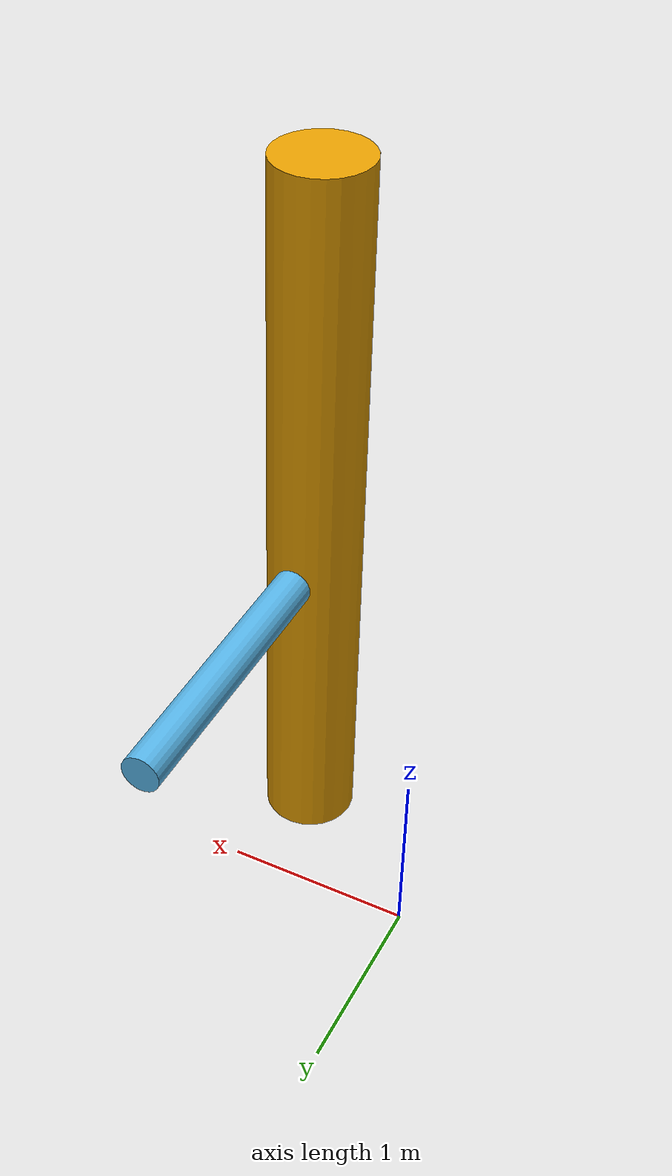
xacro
<?xml version="1.0" ?>
<robot name="vertical_obstacle_higher" xmlns:xacro="http://www.ros.org/wiki/xacro">

  <!-- Include -->
  <xacro:include filename="$(find planar_structure)/urdf/obstacle_parameters.xacro" />
  <xacro:include filename="$(find planar_structure)/urdf/obstacle_link_joint.xacro" />

  <!-- Obstacle description -->
  <m_link_cyl name="${link_00_name}"
              origin_rpy="0 0 0" origin_xyz="0.85 -0.6 2.0"
              mass="1000"
              ixx="800.0" ixy="0" ixz="0"
              iyy="800.0" iyz="0"
              izz="800.0"
              radius="0.25"
	      length="4.0" />

  <m_joint name="${link_00_name}_${link_01_name}_joint" type="revolute"
           axis_xyz="1 0 0"
           origin_rpy="0 0 0" origin_xyz="0.85 -0.35 1.75"
           parent="${link_00_name}" child="${link_01_name}"
           limit_e="1000" limit_l="-0.01" limit_u="1.3" limit_v="0.5"
           damping="0.1" friction="0.1" />

  <m_link_cyl name="${link_01_name}"
              origin_rpy="1.57 0 0" origin_xyz="0 0.75 0"
              mass="0.1"
              ixx="0.01" ixy="0" ixz="0"
              iyy="0.01" iyz="0"
              izz="0.01"
              radius="0.1"
	      length="1.5" />

  <!-- Macro for Torsional Joint Spring Plugin -->
  <gazebo>
    <plugin name="joint_spring" filename="libjoint_torsional_spring_plugin.so">
      <kx>100</kx>
      <set_point>0.01</set_point>
      <joint>${link_00_name}_${link_01_name}_joint</joint>
    </plugin>
  </gazebo>

</robot>

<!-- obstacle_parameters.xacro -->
<robot xmlns:xacro="http://www.ros.org/wiki/xacro">
  <xacro:property name="link_00_name" value="wall" />
  <xacro:property name="link_01_name" value="branch" />
</robot>

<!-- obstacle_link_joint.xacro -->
<robot xmlns:xacro="http://www.ros.org/wiki/xacro">

  <xacro:macro name="m_joint" params="name type axis_xyz origin_rpy origin_xyz parent child limit_e limit_l limit_u limit_v damping friction">
    <joint name="${name}" type="${type}">
      <axis xyz="${axis_xyz}" />
      <limit effort="${limit_e}" lower="${limit_l}" upper="${limit_u}" velocity="${limit_v}" />
      <dynamics damping="${damping}" friction="${friction}" />
      <origin rpy="${origin_rpy}" xyz="${origin_xyz}" />
      <parent link="${parent}" />
      <child link="${child}" />
    </joint>
  </xacro:macro>

  <xacro:macro name="k_joint" params="name type axis_xyz origin_rpy origin_xyz parent child limit_e limit_l limit_u limit_v damping friction spring_k spring_ref">
    <joint name="${name}" type="${type}">
      <axis xyz="${axis_xyz}" />
      <limit effort="${limit_e}" lower="${limit_l}" upper="${limit_u}" velocity="${limit_v}" />
      <dynamics damping="${damping}" friction="${friction}" spring_reference="${spring_ref}" spring_stiffness="${spring_k}" />
      <origin rpy="${origin_rpy}" xyz="${origin_xyz}" />
      <parent link="${parent}" />
      <child link="${child}" />
    </joint>
  </xacro:macro>

  <xacro:macro name="m_link_box" params="name origin_xyz origin_rpy size mass ixx ixy ixz iyy iyz izz">
    <link name="${name}">
      <inertial>
        <mass value="${mass}" />
        <origin rpy="${origin_rpy}" xyz="${origin_xyz}" />
        <inertia ixx="${ixx}" ixy="${ixy}" ixz="${ixz}" iyy="${iyy}" iyz="${iyz}" izz="${izz}" />
      </inertial>
      <collision>
        <origin rpy="${origin_rpy}" xyz="${origin_xyz}" />
        <geometry>
          <box size="${size}" />
        </geometry>
      </collision>
      <visual>
        <origin rpy="${origin_rpy}" xyz="${origin_xyz}" />
        <geometry>
          <box size="${size}" />
        </geometry>
      </visual>
    </link>
  </xacro:macro>

  <xacro:macro name="m_link_cyl" params="name origin_xyz origin_rpy radius length mass ixx ixy ixz iyy iyz izz">
    <link name="${name}">
      <inertial>
        <mass value="${mass}" />
        <origin rpy="${origin_rpy}" xyz="${origin_xyz}" />
        <inertia ixx="${ixx}" ixy="${ixy}" ixz="${ixz}" iyy="${iyy}" iyz="${iyz}" izz="${izz}" />
      </inertial>
      <collision>
        <origin rpy="${origin_rpy}" xyz="${origin_xyz}" />
        <geometry>
	  <cylinder radius="${radius}" length="${length}" />
        </geometry>
      </collision>
      <visual>
        <origin rpy="${origin_rpy}" xyz="${origin_xyz}" />
        <geometry>
          <cylinder radius="${radius}" length="${length}" />
        </geometry>
      </visual>
    </link>
  </xacro:macro>

  <xacro:macro name="m_link_mesh" params="name origin_xyz origin_rpy meshfile meshscale mass ixx ixy ixz iyy iyz izz">
    <link name="${name}">
      <inertial>
        <mass value="${mass}" />
        <origin rpy="${origin_rpy}" xyz="${origin_xyz}" />
        <inertia ixx="${ixx}" ixy="${ixy}" ixz="${ixz}" iyy="${iyy}" iyz="${iyz}" izz="${izz}" />
      </inertial>
      <collision>
        <origin rpy="${origin_rpy}" xyz="${origin_xyz}" />
        <geometry>
          <mesh filename="${meshfile}" scale="${meshscale}"/>
        </geometry>
      </collision>
      <visual>
        <origin rpy="${origin_rpy}" xyz="${origin_xyz}" />
        <geometry>
          <mesh filename="${meshfile}" scale="${meshscale}"/>
        </geometry>
      </visual>
    </link>
  </xacro:macro>

  <xacro:macro name="m_link_virtual" params="name">
    <link name="${name}">
    </link>
  </xacro:macro>

</robot>
